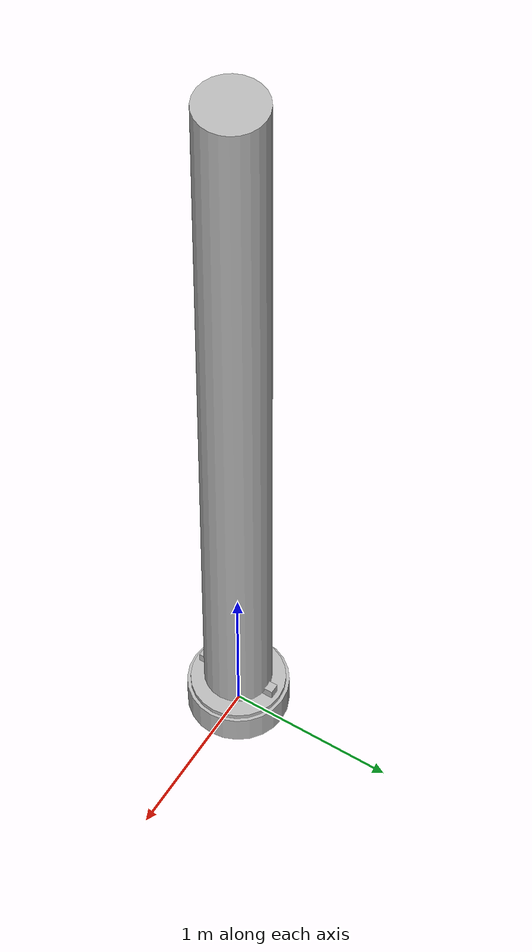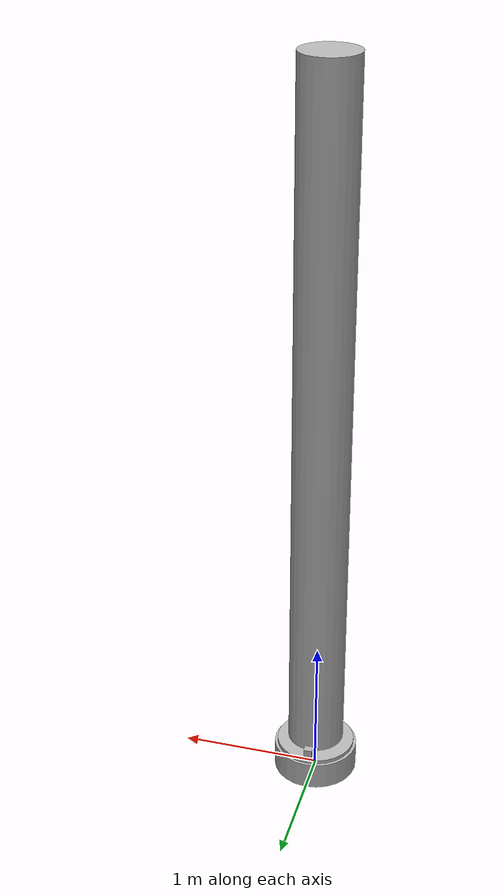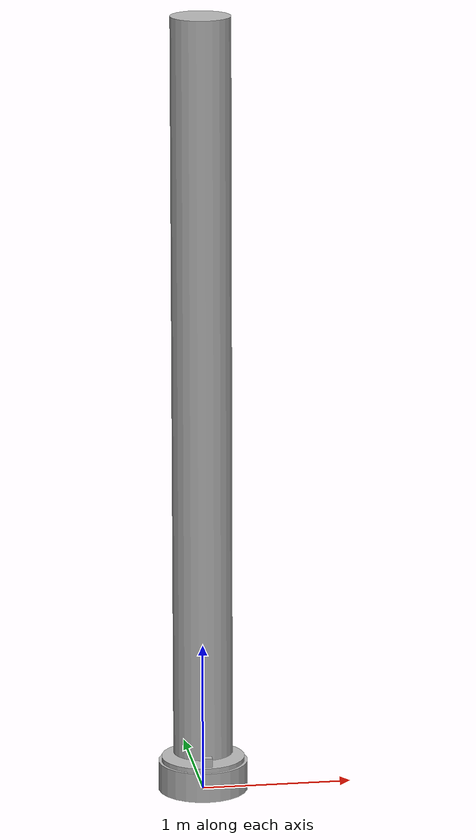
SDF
<?xml version="1.0" ?>
<sdf version="1.6">
  <model name="underwater_spotlight_gimbal">
    <static>false</static>
    <pose>0 0 0 0 0 0</pose>

    <link name="base_link">
      <pose>0 0 0 0 0 0</pose>
      <visual name="base_visual">
        <geometry><cylinder><radius>0.3</radius><length>0.2</length></cylinder></geometry>
        <pose>0 0 0.1 0 0 0</pose>
      </visual>
      <collision name="base_collision">
        <geometry><cylinder><radius>0.3</radius><length>0.2</length></cylinder></geometry>
        <pose>0 0 0.1 0 0 0</pose>
      </collision>
      <inertial>
        <mass>1.0</mass>
        <inertia>
          <ixx>0.01</ixx><ixy>0.0</ixy><ixz>0.0</ixz>
          <iyy>0.01</iyy><iyz>0.0</iyz>
          <izz>0.01</izz>
        </inertia>
      </inertial>
    </link>

    <link name="yaw_link">
      <pose>0 0 0.2 0 0 0</pose>
      <visual name="yaw_ring_visual">
        <geometry><cylinder><radius>0.28</radius><length>0.06</length></cylinder></geometry>
      </visual>
      <collision name="yaw_collision">
        <geometry><cylinder><radius>0.28</radius><length>0.06</length></cylinder></geometry>
      </collision>
      <inertial>
        <mass>0.5</mass>
        <inertia>
          <ixx>0.005</ixx><ixy>0.0</ixy><ixz>0.0</ixz>
          <iyy>0.005</iyy><iyz>0.0</iyz>
          <izz>0.005</izz>
        </inertia>
      </inertial>
    </link>

    <link name="pitch_link">
      <pose>0 0 0.26 0 0 0</pose>
      <visual name="pitch_bar_visual">
        <geometry><box><size>0.06 0.5 0.06</size></box></geometry>
      </visual>
      <collision name="pitch_collision">
        <geometry><box><size>0.06 0.5 0.06</size></box></geometry>
      </collision>
      <inertial>
        <mass>0.3</mass>
        <inertia>
          <ixx>0.003</ixx><ixy>0.0</ixy><ixz>0.0</ixz>
          <iyy>0.003</iyy><iyz>0.0</iyz>
          <izz>0.003</izz>
        </inertia>
      </inertial>
    </link>

    <link name="spotlight_link">
      <pose>0 0 0.26 0 0 0</pose>
      <visual name="spotlight_visual">
        <geometry><cylinder><radius>0.2</radius><length>5.0</length></cylinder></geometry>
        <pose>0 0 2.5 0 0 0</pose>
      </visual>
      <collision name="spotlight_collision">
        <geometry><cylinder><radius>0.2</radius><length>5.0</length></cylinder></geometry>
        <pose>0 0 2.5 0 0 0</pose>
      </collision>
      <inertial>
        <mass>1.0</mass>
        <inertia>
          <ixx>0.02</ixx><ixy>0.0</ixy><ixz>0.0</ixz>
          <iyy>0.02</iyy><iyz>0.0</iyz>
          <izz>0.02</izz>
        </inertia>
      </inertial>
      <light name="spotlight_light" type="spot">
        <pose>0 0 0.3 0 0 0</pose>
        <diffuse>1 1 1 1</diffuse>
        <specular>0.3 0.3 0.3 1</specular>
        <attenuation>
          <range>30</range><constant>0.2</constant><linear>0.01</linear><quadratic>0.001</quadratic>
        </attenuation>
        <direction>0 0 1</direction>
        <spot><inner_angle>0.2</inner_angle><outer_angle>0.7</outer_angle><falloff>0.7</falloff></spot>
        <cast_shadows>true</cast_shadows>
      </light>
    </link>

    <joint name="base_to_yaw" type="revolute">
      <parent>base_link</parent>
      <child>yaw_link</child>
      <pose>0 0 0.2 0 0 0</pose>
      <axis>
        <xyz>0 0 1</xyz>
        <limit><lower>-3.14159</lower><upper>3.14159</upper></limit>
      </axis>
    </joint>

    <joint name="yaw_to_pitch" type="revolute">
      <parent>yaw_link</parent>
      <child>pitch_link</child>
      <pose>0 0 0.26 0 0 0</pose>
      <axis>
        <xyz>0 1 0</xyz>
        <limit><lower>-1.2</lower><upper>1.2</upper></limit>
      </axis>
    </joint>

    <joint name="pitch_to_spotlight" type="fixed">
      <parent>pitch_link</parent>
      <child>spotlight_link</child>
    </joint>
  </model>
<gazebo>
  <plugin name="gazebo_ros_control" filename="libgazebo_ros_control.so">
    <robotNamespace>/spotlight</robotNamespace>
  </plugin>
</gazebo>

<!-- Transmissions for joints (ROS1) -->
<transmission name="base_yaw_trans">
  <type>transmission_interface/SimpleTransmission</type>
  <actuator name="base_yaw_motor">
    <mechanicalReduction>1</mechanicalReduction>
  </actuator>
  <joint name="base_yaw_joint">
    <hardwareInterface>hardware_interface/PositionJointInterface</hardwareInterface>
  </joint>
</transmission>

<transmission name="head_pitch_trans">
  <type>transmission_interface/SimpleTransmission</type>
  <actuator name="head_pitch_motor">
    <mechanicalReduction>1</mechanicalReduction>
  </actuator>
  <joint name="head_pitch_joint">
    <hardwareInterface>hardware_interface/PositionJointInterface</hardwareInterface>
  </joint>
</transmission>

</sdf>
